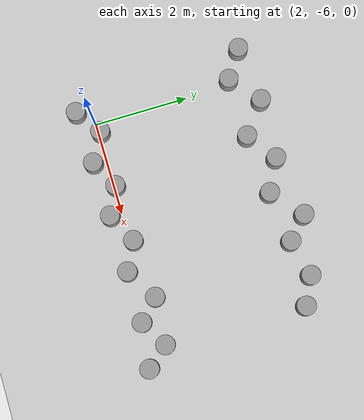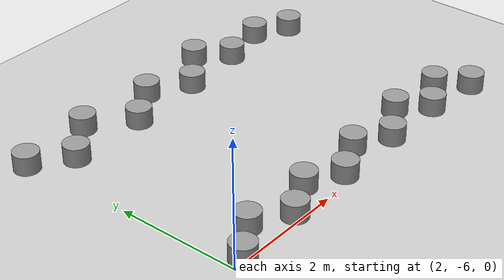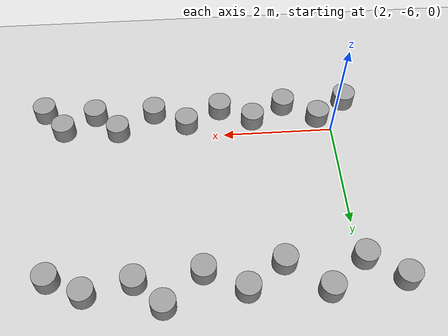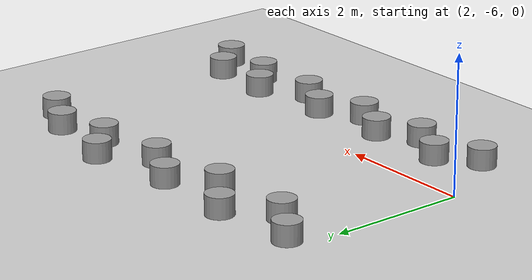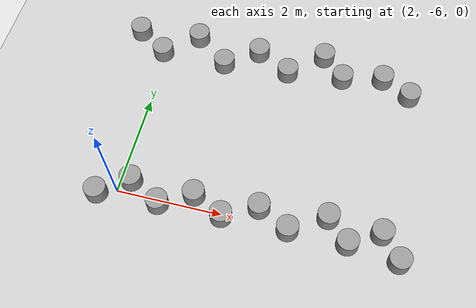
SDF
<sdf version="1.7">
 <world name="default">
  <model name="ground_plane">
   <static>1</static>
   <link name="link">
    <collision name="collision">
     <geometry><plane><normal>0 0 1</normal><size>100 100</size></plane></geometry>
     <surface>
      <contact><collide_bitmask>65535</collide_bitmask></contact>
      <friction><ode><mu>100</mu><mu2>50</mu2></ode></friction>
     </surface>
    </collision>
    <visual name="visual">
     <cast_shadows>0</cast_shadows>
     <geometry><plane><normal>0 0 1</normal><size>100 100</size></plane></geometry>
     <material>
      <script><uri>file://media/materials/scripts/gazebo.material</uri><name>Gazebo/Grey</name></script>
     </material>
    </visual>
   </link>
  </model>
  <model name="Test_pot_clone_13">
   <link name="link_0">
    <inertial>
     <mass>0.044841</mass>
     <inertia>
      <ixx>0.000748065</ixx>
      <ixy>0</ixy>
      <ixz>0</ixz>
      <iyy>0.000748065</iyy>
      <iyz>0</iyz>
      <izz>0.000864954</izz>
     </inertia>
    </inertial>
    <pose>3e-06 1e-06 0 0 -0 0</pose>
    <visual name="visual">
     <geometry><cylinder><radius>0.196415</radius><length>0.290612</length></cylinder></geometry>
     <material>
      <lighting>1</lighting>
      <script><uri>file://media/materials/scripts/gazebo.material</uri><name>Gazebo/Grey</name></script>
      <shader type="pixel"/>
     </material>
    </visual>
    <collision name="collision">
     <geometry><cylinder><radius>0.196415</radius><length>0.290612</length></cylinder></geometry>
     <surface>
      <friction>
       <ode><mu>1</mu><mu2>1</mu2><fdir1>0 0 0</fdir1><slip1>0</slip1><slip2>0</slip2></ode>
       <torsional>
        <coefficient>1</coefficient>
        <patch_radius>0</patch_radius>
        <surface_radius>0</surface_radius>
        <use_patch_radius>1</use_patch_radius>
        <ode><slip>0</slip></ode>
       </torsional>
      </friction>
      <bounce><restitution_coefficient>0</restitution_coefficient><threshold>1e+06</threshold></bounce>
      <contact>
       <collide_without_contact>0</collide_without_contact>
       <collide_without_contact_bitmask>1</collide_without_contact_bitmask>
       <collide_bitmask>1</collide_bitmask>
       <ode>
        <soft_cfm>0</soft_cfm>
        <soft_erp>0.2</soft_erp>
        <kp>1e+13</kp>
        <kd>1</kd>
        <max_vel>0.01</max_vel>
        <min_depth>0</min_depth>
       </ode>
       <bullet>
        <split_impulse>1</split_impulse>
        <split_impulse_penetration_threshold>-0.01</split_impulse_penetration_threshold>
        <soft_cfm>0</soft_cfm>
        <soft_erp>0.2</soft_erp>
        <kp>1e+13</kp>
        <kd>1</kd>
       </bullet>
      </contact>
     </surface>
    </collision>
   </link>
   <static>0</static>
   <pose>1.47064 -2.71563 0.575582 -2.5e-05 1e-06 -0.00057</pose>
  </model>
  <model name="Test_pot_clone_14">
   <link name="link_0">
    <inertial>
     <mass>0.044841</mass>
     <inertia>
      <ixx>0.000748065</ixx>
      <ixy>0</ixy>
      <ixz>0</ixz>
      <iyy>0.000748065</iyy>
      <iyz>0</iyz>
      <izz>0.000864954</izz>
     </inertia>
    </inertial>
    <pose>3e-06 1e-06 0 0 -0 0</pose>
    <visual name="visual">
     <geometry><cylinder><radius>0.196415</radius><length>0.290612</length></cylinder></geometry>
     <material>
      <lighting>1</lighting>
      <script><uri>file://media/materials/scripts/gazebo.material</uri><name>Gazebo/Grey</name></script>
      <shader type="pixel"/>
     </material>
    </visual>
    <collision name="collision">
     <geometry><cylinder><radius>0.196415</radius><length>0.290612</length></cylinder></geometry>
     <surface>
      <friction>
       <ode><mu>1</mu><mu2>1</mu2><fdir1>0 0 0</fdir1><slip1>0</slip1><slip2>0</slip2></ode>
       <torsional>
        <coefficient>1</coefficient>
        <patch_radius>0</patch_radius>
        <surface_radius>0</surface_radius>
        <use_patch_radius>1</use_patch_radius>
        <ode><slip>0</slip></ode>
       </torsional>
      </friction>
      <bounce><restitution_coefficient>0</restitution_coefficient><threshold>1e+06</threshold></bounce>
      <contact>
       <collide_without_contact>0</collide_without_contact>
       <collide_without_contact_bitmask>1</collide_without_contact_bitmask>
       <collide_bitmask>1</collide_bitmask>
       <ode>
        <soft_cfm>0</soft_cfm>
        <soft_erp>0.2</soft_erp>
        <kp>1e+13</kp>
        <kd>1</kd>
        <max_vel>0.01</max_vel>
        <min_depth>0</min_depth>
       </ode>
       <bullet>
        <split_impulse>1</split_impulse>
        <split_impulse_penetration_threshold>-0.01</split_impulse_penetration_threshold>
        <soft_cfm>0</soft_cfm>
        <soft_erp>0.2</soft_erp>
        <kp>1e+13</kp>
        <kd>1</kd>
       </bullet>
      </contact>
     </surface>
    </collision>
   </link>
   <static>0</static>
   <pose>2.04477 -3.09911 0.575586 -1.3e-05 -2e-06 -0.000704</pose>
  </model>
  <model name="Test_pot_clone_15">
   <link name="link_0">
    <inertial>
     <mass>0.044841</mass>
     <inertia>
      <ixx>0.000748065</ixx>
      <ixy>0</ixy>
      <ixz>0</ixz>
      <iyy>0.000748065</iyy>
      <iyz>0</iyz>
      <izz>0.000864954</izz>
     </inertia>
    </inertial>
    <pose>3e-06 1e-06 0 0 -0 0</pose>
    <visual name="visual">
     <geometry><cylinder><radius>0.196415</radius><length>0.290612</length></cylinder></geometry>
     <material>
      <lighting>1</lighting>
      <script><uri>file://media/materials/scripts/gazebo.material</uri><name>Gazebo/Grey</name></script>
      <shader type="pixel"/>
     </material>
    </visual>
    <collision name="collision">
     <geometry><cylinder><radius>0.196415</radius><length>0.290612</length></cylinder></geometry>
     <surface>
      <friction>
       <ode><mu>1</mu><mu2>1</mu2><fdir1>0 0 0</fdir1><slip1>0</slip1><slip2>0</slip2></ode>
       <torsional>
        <coefficient>1</coefficient>
        <patch_radius>0</patch_radius>
        <surface_radius>0</surface_radius>
        <use_patch_radius>1</use_patch_radius>
        <ode><slip>0</slip></ode>
       </torsional>
      </friction>
      <bounce><restitution_coefficient>0</restitution_coefficient><threshold>1e+06</threshold></bounce>
      <contact>
       <collide_without_contact>0</collide_without_contact>
       <collide_without_contact_bitmask>1</collide_without_contact_bitmask>
       <collide_bitmask>1</collide_bitmask>
       <ode>
        <soft_cfm>0</soft_cfm>
        <soft_erp>0.2</soft_erp>
        <kp>1e+13</kp>
        <kd>1</kd>
        <max_vel>0.01</max_vel>
        <min_depth>0</min_depth>
       </ode>
       <bullet>
        <split_impulse>1</split_impulse>
        <split_impulse_penetration_threshold>-0.01</split_impulse_penetration_threshold>
        <soft_cfm>0</soft_cfm>
        <soft_erp>0.2</soft_erp>
        <kp>1e+13</kp>
        <kd>1</kd>
       </bullet>
      </contact>
     </surface>
    </collision>
   </link>
   <static>0</static>
   <pose>2.64881 -2.59643 0.57558 -2.3e-05 1e-06 -0.000498</pose>
  </model>
  <model name="Test_pot_clone_16">
   <link name="link_0">
    <inertial>
     <mass>0.044841</mass>
     <inertia>
      <ixx>0.000748065</ixx>
      <ixy>0</ixy>
      <ixz>0</ixz>
      <iyy>0.000748065</iyy>
      <iyz>0</iyz>
      <izz>0.000864954</izz>
     </inertia>
    </inertial>
    <pose>3e-06 1e-06 0 0 -0 0</pose>
    <visual name="visual">
     <geometry><cylinder><radius>0.196415</radius><length>0.290612</length></cylinder></geometry>
     <material>
      <lighting>1</lighting>
      <script><uri>file://media/materials/scripts/gazebo.material</uri><name>Gazebo/Grey</name></script>
      <shader type="pixel"/>
     </material>
    </visual>
    <collision name="collision">
     <geometry><cylinder><radius>0.196415</radius><length>0.290612</length></cylinder></geometry>
     <surface>
      <friction>
       <ode><mu>1</mu><mu2>1</mu2><fdir1>0 0 0</fdir1><slip1>0</slip1><slip2>0</slip2></ode>
       <torsional>
        <coefficient>1</coefficient>
        <patch_radius>0</patch_radius>
        <surface_radius>0</surface_radius>
        <use_patch_radius>1</use_patch_radius>
        <ode><slip>0</slip></ode>
       </torsional>
      </friction>
      <bounce><restitution_coefficient>0</restitution_coefficient><threshold>1e+06</threshold></bounce>
      <contact>
       <collide_without_contact>0</collide_without_contact>
       <collide_without_contact_bitmask>1</collide_without_contact_bitmask>
       <collide_bitmask>1</collide_bitmask>
       <ode>
        <soft_cfm>0</soft_cfm>
        <soft_erp>0.2</soft_erp>
        <kp>1e+13</kp>
        <kd>1</kd>
        <max_vel>0.01</max_vel>
        <min_depth>0</min_depth>
       </ode>
       <bullet>
        <split_impulse>1</split_impulse>
        <split_impulse_penetration_threshold>-0.01</split_impulse_penetration_threshold>
        <soft_cfm>0</soft_cfm>
        <soft_erp>0.2</soft_erp>
        <kp>1e+13</kp>
        <kd>1</kd>
       </bullet>
      </contact>
     </surface>
    </collision>
   </link>
   <static>0</static>
   <pose>3.29426 -3.09315 0.57559 8e-06 9e-06 -0.000687</pose>
  </model>
  <model name="Test_pot_clone_17">
   <link name="link_0">
    <inertial>
     <mass>0.044841</mass>
     <inertia>
      <ixx>0.000748065</ixx>
      <ixy>0</ixy>
      <ixz>0</ixz>
      <iyy>0.000748065</iyy>
      <iyz>0</iyz>
      <izz>0.000864954</izz>
     </inertia>
    </inertial>
    <pose>3e-06 1e-06 0 0 -0 0</pose>
    <visual name="visual">
     <geometry><cylinder><radius>0.196415</radius><length>0.290612</length></cylinder></geometry>
     <material>
      <lighting>1</lighting>
      <script><uri>file://media/materials/scripts/gazebo.material</uri><name>Gazebo/Grey</name></script>
      <shader type="pixel"/>
     </material>
    </visual>
    <collision name="collision">
     <geometry><cylinder><radius>0.196415</radius><length>0.290612</length></cylinder></geometry>
     <surface>
      <friction>
       <ode><mu>1</mu><mu2>1</mu2><fdir1>0 0 0</fdir1><slip1>0</slip1><slip2>0</slip2></ode>
       <torsional>
        <coefficient>1</coefficient>
        <patch_radius>0</patch_radius>
        <surface_radius>0</surface_radius>
        <use_patch_radius>1</use_patch_radius>
        <ode><slip>0</slip></ode>
       </torsional>
      </friction>
      <bounce><restitution_coefficient>0</restitution_coefficient><threshold>1e+06</threshold></bounce>
      <contact>
       <collide_without_contact>0</collide_without_contact>
       <collide_without_contact_bitmask>1</collide_without_contact_bitmask>
       <collide_bitmask>1</collide_bitmask>
       <ode>
        <soft_cfm>0</soft_cfm>
        <soft_erp>0.2</soft_erp>
        <kp>1e+13</kp>
        <kd>1</kd>
        <max_vel>0.01</max_vel>
        <min_depth>0</min_depth>
       </ode>
       <bullet>
        <split_impulse>1</split_impulse>
        <split_impulse_penetration_threshold>-0.01</split_impulse_penetration_threshold>
        <soft_cfm>0</soft_cfm>
        <soft_erp>0.2</soft_erp>
        <kp>1e+13</kp>
        <kd>1</kd>
       </bullet>
      </contact>
     </surface>
    </collision>
   </link>
   <static>0</static>
   <pose>3.89865 -2.66951 0.57558 -1.7e-05 -0 -0.000385</pose>
  </model>
  <model name="Test_pot_clone_18">
   <link name="link_0">
    <inertial>
     <mass>0.044841</mass>
     <inertia>
      <ixx>0.000748065</ixx>
      <ixy>0</ixy>
      <ixz>0</ixz>
      <iyy>0.000748065</iyy>
      <iyz>0</iyz>
      <izz>0.000864954</izz>
     </inertia>
    </inertial>
    <pose>3e-06 1e-06 0 0 -0 0</pose>
    <visual name="visual">
     <geometry><cylinder><radius>0.196415</radius><length>0.290612</length></cylinder></geometry>
     <material>
      <lighting>1</lighting>
      <script><uri>file://media/materials/scripts/gazebo.material</uri><name>Gazebo/Grey</name></script>
      <shader type="pixel"/>
     </material>
    </visual>
    <collision name="collision">
     <geometry><cylinder><radius>0.196415</radius><length>0.290612</length></cylinder></geometry>
     <surface>
      <friction>
       <ode><mu>1</mu><mu2>1</mu2><fdir1>0 0 0</fdir1><slip1>0</slip1><slip2>0</slip2></ode>
       <torsional>
        <coefficient>1</coefficient>
        <patch_radius>0</patch_radius>
        <surface_radius>0</surface_radius>
        <use_patch_radius>1</use_patch_radius>
        <ode><slip>0</slip></ode>
       </torsional>
      </friction>
      <bounce><restitution_coefficient>0</restitution_coefficient><threshold>1e+06</threshold></bounce>
      <contact>
       <collide_without_contact>0</collide_without_contact>
       <collide_without_contact_bitmask>1</collide_without_contact_bitmask>
       <collide_bitmask>1</collide_bitmask>
       <ode>
        <soft_cfm>0</soft_cfm>
        <soft_erp>0.2</soft_erp>
        <kp>1e+13</kp>
        <kd>1</kd>
        <max_vel>0.01</max_vel>
        <min_depth>0</min_depth>
       </ode>
       <bullet>
        <split_impulse>1</split_impulse>
        <split_impulse_penetration_threshold>-0.01</split_impulse_penetration_threshold>
        <soft_cfm>0</soft_cfm>
        <soft_erp>0.2</soft_erp>
        <kp>1e+13</kp>
        <kd>1</kd>
       </bullet>
      </contact>
     </surface>
    </collision>
   </link>
   <static>0</static>
   <pose>4.54505 -3.00659 0.575594 3.9e-05 -2e-06 -0.0003</pose>
  </model>
  <model name="Test_pot_clone_19">
   <link name="link_0">
    <inertial>
     <mass>0.044841</mass>
     <inertia>
      <ixx>0.000748065</ixx>
      <ixy>0</ixy>
      <ixz>0</ixz>
      <iyy>0.000748065</iyy>
      <iyz>0</iyz>
      <izz>0.000864954</izz>
     </inertia>
    </inertial>
    <pose>3e-06 1e-06 0 0 -0 0</pose>
    <visual name="visual">
     <geometry><cylinder><radius>0.196415</radius><length>0.290612</length></cylinder></geometry>
     <material>
      <lighting>1</lighting>
      <script><uri>file://media/materials/scripts/gazebo.material</uri><name>Gazebo/Grey</name></script>
      <shader type="pixel"/>
     </material>
    </visual>
    <collision name="collision">
     <geometry><cylinder><radius>0.196415</radius><length>0.290612</length></cylinder></geometry>
     <surface>
      <friction>
       <ode><mu>1</mu><mu2>1</mu2><fdir1>0 0 0</fdir1><slip1>0</slip1><slip2>0</slip2></ode>
       <torsional>
        <coefficient>1</coefficient>
        <patch_radius>0</patch_radius>
        <surface_radius>0</surface_radius>
        <use_patch_radius>1</use_patch_radius>
        <ode><slip>0</slip></ode>
       </torsional>
      </friction>
      <bounce><restitution_coefficient>0</restitution_coefficient><threshold>1e+06</threshold></bounce>
      <contact>
       <collide_without_contact>0</collide_without_contact>
       <collide_without_contact_bitmask>1</collide_without_contact_bitmask>
       <collide_bitmask>1</collide_bitmask>
       <ode>
        <soft_cfm>0</soft_cfm>
        <soft_erp>0.2</soft_erp>
        <kp>1e+13</kp>
        <kd>1</kd>
        <max_vel>0.01</max_vel>
        <min_depth>0</min_depth>
       </ode>
       <bullet>
        <split_impulse>1</split_impulse>
        <split_impulse_penetration_threshold>-0.01</split_impulse_penetration_threshold>
        <soft_cfm>0</soft_cfm>
        <soft_erp>0.2</soft_erp>
        <kp>1e+13</kp>
        <kd>1</kd>
       </bullet>
      </contact>
     </surface>
    </collision>
   </link>
   <static>0</static>
   <pose>5.16829 -2.48542 0.575587 -5e-06 5.3e-05 -0.000472</pose>
  </model>
  <model name="Test_pot_clone_20">
   <link name="link_0">
    <inertial>
     <mass>0.044841</mass>
     <inertia>
      <ixx>0.000748065</ixx>
      <ixy>0</ixy>
      <ixz>0</ixz>
      <iyy>0.000748065</iyy>
      <iyz>0</iyz>
      <izz>0.000864954</izz>
     </inertia>
    </inertial>
    <pose>3e-06 1e-06 0 0 -0 0</pose>
    <visual name="visual">
     <geometry><cylinder><radius>0.196415</radius><length>0.290612</length></cylinder></geometry>
     <material>
      <lighting>1</lighting>
      <script><uri>file://media/materials/scripts/gazebo.material</uri><name>Gazebo/Grey</name></script>
      <shader type="pixel"/>
     </material>
    </visual>
    <collision name="collision">
     <geometry><cylinder><radius>0.196415</radius><length>0.290612</length></cylinder></geometry>
     <surface>
      <friction>
       <ode><mu>1</mu><mu2>1</mu2><fdir1>0 0 0</fdir1><slip1>0</slip1><slip2>0</slip2></ode>
       <torsional>
        <coefficient>1</coefficient>
        <patch_radius>0</patch_radius>
        <surface_radius>0</surface_radius>
        <use_patch_radius>1</use_patch_radius>
        <ode><slip>0</slip></ode>
       </torsional>
      </friction>
      <bounce><restitution_coefficient>0</restitution_coefficient><threshold>1e+06</threshold></bounce>
      <contact>
       <collide_without_contact>0</collide_without_contact>
       <collide_without_contact_bitmask>1</collide_without_contact_bitmask>
       <collide_bitmask>1</collide_bitmask>
       <ode>
        <soft_cfm>0</soft_cfm>
        <soft_erp>0.2</soft_erp>
        <kp>1e+13</kp>
        <kd>1</kd>
        <max_vel>0.01</max_vel>
        <min_depth>0</min_depth>
       </ode>
       <bullet>
        <split_impulse>1</split_impulse>
        <split_impulse_penetration_threshold>-0.01</split_impulse_penetration_threshold>
        <soft_cfm>0</soft_cfm>
        <soft_erp>0.2</soft_erp>
        <kp>1e+13</kp>
        <kd>1</kd>
       </bullet>
      </contact>
     </surface>
    </collision>
   </link>
   <static>0</static>
   <pose>5.60424 -2.90045 0.575586 -2.7e-05 1.4e-05 -0.000422</pose>
  </model>
  <model name="Test_pot_clone_21">
   <link name="link_0">
    <inertial>
     <mass>0.044841</mass>
     <inertia>
      <ixx>0.000748065</ixx>
      <ixy>0</ixy>
      <ixz>0</ixz>
      <iyy>0.000748065</iyy>
      <iyz>0</iyz>
      <izz>0.000864954</izz>
     </inertia>
    </inertial>
    <pose>3e-06 1e-06 0 0 -0 0</pose>
    <visual name="visual">
     <geometry><cylinder><radius>0.196415</radius><length>0.290612</length></cylinder></geometry>
     <material>
      <lighting>1</lighting>
      <script><uri>file://media/materials/scripts/gazebo.material</uri><name>Gazebo/Grey</name></script>
      <shader type="pixel"/>
     </material>
    </visual>
    <collision name="collision">
     <geometry><cylinder><radius>0.196415</radius><length>0.290612</length></cylinder></geometry>
     <surface>
      <friction>
       <ode><mu>1</mu><mu2>1</mu2><fdir1>0 0 0</fdir1><slip1>0</slip1><slip2>0</slip2></ode>
       <torsional>
        <coefficient>1</coefficient>
        <patch_radius>0</patch_radius>
        <surface_radius>0</surface_radius>
        <use_patch_radius>1</use_patch_radius>
        <ode><slip>0</slip></ode>
       </torsional>
      </friction>
      <bounce><restitution_coefficient>0</restitution_coefficient><threshold>1e+06</threshold></bounce>
      <contact>
       <collide_without_contact>0</collide_without_contact>
       <collide_without_contact_bitmask>1</collide_without_contact_bitmask>
       <collide_bitmask>1</collide_bitmask>
       <ode>
        <soft_cfm>0</soft_cfm>
        <soft_erp>0.2</soft_erp>
        <kp>1e+13</kp>
        <kd>1</kd>
        <max_vel>0.01</max_vel>
        <min_depth>0</min_depth>
       </ode>
       <bullet>
        <split_impulse>1</split_impulse>
        <split_impulse_penetration_threshold>-0.01</split_impulse_penetration_threshold>
        <soft_cfm>0</soft_cfm>
        <soft_erp>0.2</soft_erp>
        <kp>1e+13</kp>
        <kd>1</kd>
       </bullet>
      </contact>
     </surface>
    </collision>
   </link>
   <static>0</static>
   <pose>6.36774 -2.73338 0.57558 -1.4e-05 0 -0.000467</pose>
  </model>
  <model name="Test_pot_clone_22">
   <link name="link_0">
    <inertial>
     <mass>0.044841</mass>
     <inertia>
      <ixx>0.000748065</ixx>
      <ixy>0</ixy>
      <ixz>0</ixz>
      <iyy>0.000748065</iyy>
      <iyz>0</iyz>
      <izz>0.000864954</izz>
     </inertia>
    </inertial>
    <pose>3e-06 1e-06 0 0 -0 0</pose>
    <visual name="visual">
     <geometry><cylinder><radius>0.196415</radius><length>0.290612</length></cylinder></geometry>
     <material>
      <lighting>1</lighting>
      <script><uri>file://media/materials/scripts/gazebo.material</uri><name>Gazebo/Grey</name></script>
      <shader type="pixel"/>
     </material>
    </visual>
    <collision name="collision">
     <geometry><cylinder><radius>0.196415</radius><length>0.290612</length></cylinder></geometry>
     <surface>
      <friction>
       <ode><mu>1</mu><mu2>1</mu2><fdir1>0 0 0</fdir1><slip1>0</slip1><slip2>0</slip2></ode>
       <torsional>
        <coefficient>1</coefficient>
        <patch_radius>0</patch_radius>
        <surface_radius>0</surface_radius>
        <use_patch_radius>1</use_patch_radius>
        <ode><slip>0</slip></ode>
       </torsional>
      </friction>
      <bounce><restitution_coefficient>0</restitution_coefficient><threshold>1e+06</threshold></bounce>
      <contact>
       <collide_without_contact>0</collide_without_contact>
       <collide_without_contact_bitmask>1</collide_without_contact_bitmask>
       <collide_bitmask>1</collide_bitmask>
       <ode>
        <soft_cfm>0</soft_cfm>
        <soft_erp>0.2</soft_erp>
        <kp>1e+13</kp>
        <kd>1</kd>
        <max_vel>0.01</max_vel>
        <min_depth>0</min_depth>
       </ode>
       <bullet>
        <split_impulse>1</split_impulse>
        <split_impulse_penetration_threshold>-0.01</split_impulse_penetration_threshold>
        <soft_cfm>0</soft_cfm>
        <soft_erp>0.2</soft_erp>
        <kp>1e+13</kp>
        <kd>1</kd>
       </bullet>
      </contact>
     </surface>
    </collision>
   </link>
   <static>0</static>
   <pose>6.91835 -3.0068 0.575592 -3.5e-05 3.8e-05 -0.000504</pose>
  </model>
  <model name="Test_pot_clone_45">
   <link name="link_0">
    <inertial>
     <mass>0.044841</mass>
     <inertia>
      <ixx>0.000748065</ixx>
      <ixy>0</ixy>
      <ixz>0</ixz>
      <iyy>0.000748065</iyy>
      <iyz>0</iyz>
      <izz>0.000864954</izz>
     </inertia>
    </inertial>
    <pose>3e-06 1e-06 0 0 -0 0</pose>
    <visual name="visual">
     <geometry><cylinder><radius>0.196415</radius><length>0.290612</length></cylinder></geometry>
     <material>
      <lighting>1</lighting>
      <script><uri>file://media/materials/scripts/gazebo.material</uri><name>Gazebo/Grey</name></script>
      <shader type="pixel"/>
     </material>
    </visual>
    <collision name="collision">
     <geometry><cylinder><radius>0.196415</radius><length>0.290612</length></cylinder></geometry>
     <surface>
      <friction>
       <ode><mu>1</mu><mu2>1</mu2><fdir1>0 0 0</fdir1><slip1>0</slip1><slip2>0</slip2></ode>
       <torsional>
        <coefficient>1</coefficient>
        <patch_radius>0</patch_radius>
        <surface_radius>0</surface_radius>
        <use_patch_radius>1</use_patch_radius>
        <ode><slip>0</slip></ode>
       </torsional>
      </friction>
      <bounce><restitution_coefficient>0</restitution_coefficient><threshold>1e+06</threshold></bounce>
      <contact>
       <collide_without_contact>0</collide_without_contact>
       <collide_without_contact_bitmask>1</collide_without_contact_bitmask>
       <collide_bitmask>1</collide_bitmask>
       <ode>
        <soft_cfm>0</soft_cfm>
        <soft_erp>0.2</soft_erp>
        <kp>1e+13</kp>
        <kd>1</kd>
        <max_vel>0.01</max_vel>
        <min_depth>0</min_depth>
       </ode>
       <bullet>
        <split_impulse>1</split_impulse>
        <split_impulse_penetration_threshold>-0.01</split_impulse_penetration_threshold>
        <soft_cfm>0</soft_cfm>
        <soft_erp>0.2</soft_erp>
        <kp>1e+13</kp>
        <kd>1</kd>
       </bullet>
      </contact>
     </surface>
    </collision>
   </link>
   <static>0</static>
   <pose>1.81623 -6.29586 0.575588 -3e-06 -1e-06 -0.000497</pose>
  </model>
  <model name="Test_pot_clone_46">
   <link name="link_0">
    <inertial>
     <mass>0.044841</mass>
     <inertia>
      <ixx>0.000748065</ixx>
      <ixy>0</ixy>
      <ixz>0</ixz>
      <iyy>0.000748065</iyy>
      <iyz>0</iyz>
      <izz>0.000864954</izz>
     </inertia>
    </inertial>
    <pose>3e-06 1e-06 0 0 -0 0</pose>
    <visual name="visual">
     <geometry><cylinder><radius>0.196415</radius><length>0.290612</length></cylinder></geometry>
     <material>
      <lighting>1</lighting>
      <script><uri>file://media/materials/scripts/gazebo.material</uri><name>Gazebo/Grey</name></script>
      <shader type="pixel"/>
     </material>
    </visual>
    <collision name="collision">
     <geometry><cylinder><radius>0.196415</radius><length>0.290612</length></cylinder></geometry>
     <surface>
      <friction>
       <ode><mu>1</mu><mu2>1</mu2><fdir1>0 0 0</fdir1><slip1>0</slip1><slip2>0</slip2></ode>
       <torsional>
        <coefficient>1</coefficient>
        <patch_radius>0</patch_radius>
        <surface_radius>0</surface_radius>
        <use_patch_radius>1</use_patch_radius>
        <ode><slip>0</slip></ode>
       </torsional>
      </friction>
      <bounce><restitution_coefficient>0</restitution_coefficient><threshold>1e+06</threshold></bounce>
      <contact>
       <collide_without_contact>0</collide_without_contact>
       <collide_without_contact_bitmask>1</collide_without_contact_bitmask>
       <collide_bitmask>1</collide_bitmask>
       <ode>
        <soft_cfm>0</soft_cfm>
        <soft_erp>0.2</soft_erp>
        <kp>1e+13</kp>
        <kd>1</kd>
        <max_vel>0.01</max_vel>
        <min_depth>0</min_depth>
       </ode>
       <bullet>
        <split_impulse>1</split_impulse>
        <split_impulse_penetration_threshold>-0.01</split_impulse_penetration_threshold>
        <soft_cfm>0</soft_cfm>
        <soft_erp>0.2</soft_erp>
        <kp>1e+13</kp>
        <kd>1</kd>
       </bullet>
      </contact>
     </surface>
    </collision>
   </link>
   <static>0</static>
   <pose>2.34367 -5.92861 0.575588 1.4e-05 -2.9e-05 -0.00024</pose>
  </model>
  <model name="Test_pot_clone_47">
   <link name="link_0">
    <inertial>
     <mass>0.044841</mass>
     <inertia>
      <ixx>0.000748065</ixx>
      <ixy>0</ixy>
      <ixz>0</ixz>
      <iyy>0.000748065</iyy>
      <iyz>0</iyz>
      <izz>0.000864954</izz>
     </inertia>
    </inertial>
    <pose>3e-06 1e-06 0 0 -0 0</pose>
    <visual name="visual">
     <geometry><cylinder><radius>0.196415</radius><length>0.290612</length></cylinder></geometry>
     <material>
      <lighting>1</lighting>
      <script><uri>file://media/materials/scripts/gazebo.material</uri><name>Gazebo/Grey</name></script>
      <shader type="pixel"/>
     </material>
    </visual>
    <collision name="collision">
     <geometry><cylinder><radius>0.196415</radius><length>0.290612</length></cylinder></geometry>
     <surface>
      <friction>
       <ode><mu>1</mu><mu2>1</mu2><fdir1>0 0 0</fdir1><slip1>0</slip1><slip2>0</slip2></ode>
       <torsional>
        <coefficient>1</coefficient>
        <patch_radius>0</patch_radius>
        <surface_radius>0</surface_radius>
        <use_patch_radius>1</use_patch_radius>
        <ode><slip>0</slip></ode>
       </torsional>
      </friction>
      <bounce><restitution_coefficient>0</restitution_coefficient><threshold>1e+06</threshold></bounce>
      <contact>
       <collide_without_contact>0</collide_without_contact>
       <collide_without_contact_bitmask>1</collide_without_contact_bitmask>
       <collide_bitmask>1</collide_bitmask>
       <ode>
        <soft_cfm>0</soft_cfm>
        <soft_erp>0.2</soft_erp>
        <kp>1e+13</kp>
        <kd>1</kd>
        <max_vel>0.01</max_vel>
        <min_depth>0</min_depth>
       </ode>
       <bullet>
        <split_impulse>1</split_impulse>
        <split_impulse_penetration_threshold>-0.01</split_impulse_penetration_threshold>
        <soft_cfm>0</soft_cfm>
        <soft_erp>0.2</soft_erp>
        <kp>1e+13</kp>
        <kd>1</kd>
       </bullet>
      </contact>
     </surface>
    </collision>
   </link>
   <static>0</static>
   <pose>2.92986 -6.2444 0.57559 -3.9e-05 -3e-06 -0.000816</pose>
  </model>
  <model name="Test_pot_clone_48">
   <link name="link_0">
    <inertial>
     <mass>0.044841</mass>
     <inertia>
      <ixx>0.000748065</ixx>
      <ixy>0</ixy>
      <ixz>0</ixz>
      <iyy>0.000748065</iyy>
      <iyz>0</iyz>
      <izz>0.000864954</izz>
     </inertia>
    </inertial>
    <pose>3e-06 1e-06 0 0 -0 0</pose>
    <visual name="visual">
     <geometry><cylinder><radius>0.196415</radius><length>0.290612</length></cylinder></geometry>
     <material>
      <lighting>1</lighting>
      <script><uri>file://media/materials/scripts/gazebo.material</uri><name>Gazebo/Grey</name></script>
      <shader type="pixel"/>
     </material>
    </visual>
    <collision name="collision">
     <geometry><cylinder><radius>0.196415</radius><length>0.290612</length></cylinder></geometry>
     <surface>
      <friction>
       <ode><mu>1</mu><mu2>1</mu2><fdir1>0 0 0</fdir1><slip1>0</slip1><slip2>0</slip2></ode>
       <torsional>
        <coefficient>1</coefficient>
        <patch_radius>0</patch_radius>
        <surface_radius>0</surface_radius>
        <use_patch_radius>1</use_patch_radius>
        <ode><slip>0</slip></ode>
       </torsional>
      </friction>
      <bounce><restitution_coefficient>0</restitution_coefficient><threshold>1e+06</threshold></bounce>
      <contact>
       <collide_without_contact>0</collide_without_contact>
       <collide_without_contact_bitmask>1</collide_without_contact_bitmask>
       <collide_bitmask>1</collide_bitmask>
       <ode>
        <soft_cfm>0</soft_cfm>
        <soft_erp>0.2</soft_erp>
        <kp>1e+13</kp>
        <kd>1</kd>
        <max_vel>0.01</max_vel>
        <min_depth>0</min_depth>
       </ode>
       <bullet>
        <split_impulse>1</split_impulse>
        <split_impulse_penetration_threshold>-0.01</split_impulse_penetration_threshold>
        <soft_cfm>0</soft_cfm>
        <soft_erp>0.2</soft_erp>
        <kp>1e+13</kp>
        <kd>1</kd>
       </bullet>
      </contact>
     </surface>
    </collision>
   </link>
   <static>0</static>
   <pose>3.50907 -5.94103 0.575588 2e-05 1.6e-05 -0.000406</pose>
  </model>
  <model name="Test_pot_clone_49">
   <link name="link_0">
    <inertial>
     <mass>0.044841</mass>
     <inertia>
      <ixx>0.000748065</ixx>
      <ixy>0</ixy>
      <ixz>0</ixz>
      <iyy>0.000748065</iyy>
      <iyz>0</iyz>
      <izz>0.000864954</izz>
     </inertia>
    </inertial>
    <pose>3e-06 1e-06 0 0 -0 0</pose>
    <visual name="visual">
     <geometry><cylinder><radius>0.196415</radius><length>0.290612</length></cylinder></geometry>
     <material>
      <lighting>1</lighting>
      <script><uri>file://media/materials/scripts/gazebo.material</uri><name>Gazebo/Grey</name></script>
      <shader type="pixel"/>
     </material>
    </visual>
    <collision name="collision">
     <geometry><cylinder><radius>0.196415</radius><length>0.290612</length></cylinder></geometry>
     <surface>
      <friction>
       <ode><mu>1</mu><mu2>1</mu2><fdir1>0 0 0</fdir1><slip1>0</slip1><slip2>0</slip2></ode>
       <torsional>
        <coefficient>1</coefficient>
        <patch_radius>0</patch_radius>
        <surface_radius>0</surface_radius>
        <use_patch_radius>1</use_patch_radius>
        <ode><slip>0</slip></ode>
       </torsional>
      </friction>
      <bounce><restitution_coefficient>0</restitution_coefficient><threshold>1e+06</threshold></bounce>
      <contact>
       <collide_without_contact>0</collide_without_contact>
       <collide_without_contact_bitmask>1</collide_without_contact_bitmask>
       <collide_bitmask>1</collide_bitmask>
       <ode>
        <soft_cfm>0</soft_cfm>
        <soft_erp>0.2</soft_erp>
        <kp>1e+13</kp>
        <kd>1</kd>
        <max_vel>0.01</max_vel>
        <min_depth>0</min_depth>
       </ode>
       <bullet>
        <split_impulse>1</split_impulse>
        <split_impulse_penetration_threshold>-0.01</split_impulse_penetration_threshold>
        <soft_cfm>0</soft_cfm>
        <soft_erp>0.2</soft_erp>
        <kp>1e+13</kp>
        <kd>1</kd>
       </bullet>
      </contact>
     </surface>
    </collision>
   </link>
   <static>0</static>
   <pose>4.07438 -6.21453 0.575599 3.9e-05 -5.4e-05 -0.000469</pose>
  </model>
  <model name="Test_pot_clone_50">
   <link name="link_0">
    <inertial>
     <mass>0.044841</mass>
     <inertia>
      <ixx>0.000748065</ixx>
      <ixy>0</ixy>
      <ixz>0</ixz>
      <iyy>0.000748065</iyy>
      <iyz>0</iyz>
      <izz>0.000864954</izz>
     </inertia>
    </inertial>
    <pose>3e-06 1e-06 0 0 -0 0</pose>
    <visual name="visual">
     <geometry><cylinder><radius>0.196415</radius><length>0.290612</length></cylinder></geometry>
     <material>
      <lighting>1</lighting>
      <script><uri>file://media/materials/scripts/gazebo.material</uri><name>Gazebo/Grey</name></script>
      <shader type="pixel"/>
     </material>
    </visual>
    <collision name="collision">
     <geometry><cylinder><radius>0.196415</radius><length>0.290612</length></cylinder></geometry>
     <surface>
      <friction>
       <ode><mu>1</mu><mu2>1</mu2><fdir1>0 0 0</fdir1><slip1>0</slip1><slip2>0</slip2></ode>
       <torsional>
        <coefficient>1</coefficient>
        <patch_radius>0</patch_radius>
        <surface_radius>0</surface_radius>
        <use_patch_radius>1</use_patch_radius>
        <ode><slip>0</slip></ode>
       </torsional>
      </friction>
      <bounce><restitution_coefficient>0</restitution_coefficient><threshold>1e+06</threshold></bounce>
      <contact>
       <collide_without_contact>0</collide_without_contact>
       <collide_without_contact_bitmask>1</collide_without_contact_bitmask>
       <collide_bitmask>1</collide_bitmask>
       <ode>
        <soft_cfm>0</soft_cfm>
        <soft_erp>0.2</soft_erp>
        <kp>1e+13</kp>
        <kd>1</kd>
        <max_vel>0.01</max_vel>
        <min_depth>0</min_depth>
       </ode>
       <bullet>
        <split_impulse>1</split_impulse>
        <split_impulse_penetration_threshold>-0.01</split_impulse_penetration_threshold>
        <soft_cfm>0</soft_cfm>
        <soft_erp>0.2</soft_erp>
        <kp>1e+13</kp>
        <kd>1</kd>
       </bullet>
      </contact>
     </surface>
    </collision>
   </link>
   <static>0</static>
   <pose>4.68143 -5.90851 0.575589 2e-05 -3e-06 -0.00049</pose>
  </model>
  <model name="Test_pot_clone_51">
   <link name="link_0">
    <inertial>
     <mass>0.044841</mass>
     <inertia>
      <ixx>0.000748065</ixx>
      <ixy>0</ixy>
      <ixz>0</ixz>
      <iyy>0.000748065</iyy>
      <iyz>0</iyz>
      <izz>0.000864954</izz>
     </inertia>
    </inertial>
    <pose>3e-06 1e-06 0 0 -0 0</pose>
    <visual name="visual">
     <geometry><cylinder><radius>0.196415</radius><length>0.290612</length></cylinder></geometry>
     <material>
      <lighting>1</lighting>
      <script><uri>file://media/materials/scripts/gazebo.material</uri><name>Gazebo/Grey</name></script>
      <shader type="pixel"/>
     </material>
    </visual>
    <collision name="collision">
     <geometry><cylinder><radius>0.196415</radius><length>0.290612</length></cylinder></geometry>
     <surface>
      <friction>
       <ode><mu>1</mu><mu2>1</mu2><fdir1>0 0 0</fdir1><slip1>0</slip1><slip2>0</slip2></ode>
       <torsional>
        <coefficient>1</coefficient>
        <patch_radius>0</patch_radius>
        <surface_radius>0</surface_radius>
        <use_patch_radius>1</use_patch_radius>
        <ode><slip>0</slip></ode>
       </torsional>
      </friction>
      <bounce><restitution_coefficient>0</restitution_coefficient><threshold>1e+06</threshold></bounce>
      <contact>
       <collide_without_contact>0</collide_without_contact>
       <collide_without_contact_bitmask>1</collide_without_contact_bitmask>
       <collide_bitmask>1</collide_bitmask>
       <ode>
        <soft_cfm>0</soft_cfm>
        <soft_erp>0.2</soft_erp>
        <kp>1e+13</kp>
        <kd>1</kd>
        <max_vel>0.01</max_vel>
        <min_depth>0</min_depth>
       </ode>
       <bullet>
        <split_impulse>1</split_impulse>
        <split_impulse_penetration_threshold>-0.01</split_impulse_penetration_threshold>
        <soft_cfm>0</soft_cfm>
        <soft_erp>0.2</soft_erp>
        <kp>1e+13</kp>
        <kd>1</kd>
       </bullet>
      </contact>
     </surface>
    </collision>
   </link>
   <static>0</static>
   <pose>5.24931 -6.19264 0.575596 -3.7e-05 3e-06 -0.000435</pose>
  </model>
  <model name="Test_pot_clone_52">
   <link name="link_0">
    <inertial>
     <mass>0.044841</mass>
     <inertia>
      <ixx>0.000748065</ixx>
      <ixy>0</ixy>
      <ixz>0</ixz>
      <iyy>0.000748065</iyy>
      <iyz>0</iyz>
      <izz>0.000864954</izz>
     </inertia>
    </inertial>
    <pose>3e-06 1e-06 0 0 -0 0</pose>
    <visual name="visual">
     <geometry><cylinder><radius>0.196415</radius><length>0.290612</length></cylinder></geometry>
     <material>
      <lighting>1</lighting>
      <script><uri>file://media/materials/scripts/gazebo.material</uri><name>Gazebo/Grey</name></script>
      <shader type="pixel"/>
     </material>
    </visual>
    <collision name="collision">
     <geometry><cylinder><radius>0.196415</radius><length>0.290612</length></cylinder></geometry>
     <surface>
      <friction>
       <ode><mu>1</mu><mu2>1</mu2><fdir1>0 0 0</fdir1><slip1>0</slip1><slip2>0</slip2></ode>
       <torsional>
        <coefficient>1</coefficient>
        <patch_radius>0</patch_radius>
        <surface_radius>0</surface_radius>
        <use_patch_radius>1</use_patch_radius>
        <ode><slip>0</slip></ode>
       </torsional>
      </friction>
      <bounce><restitution_coefficient>0</restitution_coefficient><threshold>1e+06</threshold></bounce>
      <contact>
       <collide_without_contact>0</collide_without_contact>
       <collide_without_contact_bitmask>1</collide_without_contact_bitmask>
       <collide_bitmask>1</collide_bitmask>
       <ode>
        <soft_cfm>0</soft_cfm>
        <soft_erp>0.2</soft_erp>
        <kp>1e+13</kp>
        <kd>1</kd>
        <max_vel>0.01</max_vel>
        <min_depth>0</min_depth>
       </ode>
       <bullet>
        <split_impulse>1</split_impulse>
        <split_impulse_penetration_threshold>-0.01</split_impulse_penetration_threshold>
        <soft_cfm>0</soft_cfm>
        <soft_erp>0.2</soft_erp>
        <kp>1e+13</kp>
        <kd>1</kd>
       </bullet>
      </contact>
     </surface>
    </collision>
   </link>
   <static>0</static>
   <pose>5.89002 -5.80795 0.575594 5.1e-05 1.2e-05 -0.0003</pose>
  </model>
  <model name="Test_pot_clone_53">
   <link name="link_0">
    <inertial>
     <mass>0.044841</mass>
     <inertia>
      <ixx>0.000748065</ixx>
      <ixy>0</ixy>
      <ixz>0</ixz>
      <iyy>0.000748065</iyy>
      <iyz>0</iyz>
      <izz>0.000864954</izz>
     </inertia>
    </inertial>
    <pose>3e-06 1e-06 0 0 -0 0</pose>
    <visual name="visual">
     <geometry><cylinder><radius>0.196415</radius><length>0.290612</length></cylinder></geometry>
     <material>
      <lighting>1</lighting>
      <script><uri>file://media/materials/scripts/gazebo.material</uri><name>Gazebo/Grey</name></script>
      <shader type="pixel"/>
     </material>
    </visual>
    <collision name="collision">
     <geometry><cylinder><radius>0.196415</radius><length>0.290612</length></cylinder></geometry>
     <surface>
      <friction>
       <ode><mu>1</mu><mu2>1</mu2><fdir1>0 0 0</fdir1><slip1>0</slip1><slip2>0</slip2></ode>
       <torsional>
        <coefficient>1</coefficient>
        <patch_radius>0</patch_radius>
        <surface_radius>0</surface_radius>
        <use_patch_radius>1</use_patch_radius>
        <ode><slip>0</slip></ode>
       </torsional>
      </friction>
      <bounce><restitution_coefficient>0</restitution_coefficient><threshold>1e+06</threshold></bounce>
      <contact>
       <collide_without_contact>0</collide_without_contact>
       <collide_without_contact_bitmask>1</collide_without_contact_bitmask>
       <collide_bitmask>1</collide_bitmask>
       <ode>
        <soft_cfm>0</soft_cfm>
        <soft_erp>0.2</soft_erp>
        <kp>1e+13</kp>
        <kd>1</kd>
        <max_vel>0.01</max_vel>
        <min_depth>0</min_depth>
       </ode>
       <bullet>
        <split_impulse>1</split_impulse>
        <split_impulse_penetration_threshold>-0.01</split_impulse_penetration_threshold>
        <soft_cfm>0</soft_cfm>
        <soft_erp>0.2</soft_erp>
        <kp>1e+13</kp>
        <kd>1</kd>
       </bullet>
      </contact>
     </surface>
    </collision>
   </link>
   <static>0</static>
   <pose>6.29322 -6.19888 0.575584 -2.1e-05 -0 -0.00011</pose>
  </model>
  <model name="Test_pot_clone_54">
   <link name="link_0">
    <inertial>
     <mass>0.044841</mass>
     <inertia>
      <ixx>0.000748065</ixx>
      <ixy>0</ixy>
      <ixz>0</ixz>
      <iyy>0.000748065</iyy>
      <iyz>0</iyz>
      <izz>0.000864954</izz>
     </inertia>
    </inertial>
    <pose>3e-06 1e-06 0 0 -0 0</pose>
    <visual name="visual">
     <geometry><cylinder><radius>0.196415</radius><length>0.290612</length></cylinder></geometry>
     <material>
      <lighting>1</lighting>
      <script><uri>file://media/materials/scripts/gazebo.material</uri><name>Gazebo/Grey</name></script>
      <shader type="pixel"/>
     </material>
    </visual>
    <collision name="collision">
     <geometry><cylinder><radius>0.196415</radius><length>0.290612</length></cylinder></geometry>
     <surface>
      <friction>
       <ode><mu>1</mu><mu2>1</mu2><fdir1>0 0 0</fdir1><slip1>0</slip1><slip2>0</slip2></ode>
       <torsional>
        <coefficient>1</coefficient>
        <patch_radius>0</patch_radius>
        <surface_radius>0</surface_radius>
        <use_patch_radius>1</use_patch_radius>
        <ode><slip>0</slip></ode>
       </torsional>
      </friction>
      <bounce><restitution_coefficient>0</restitution_coefficient><threshold>1e+06</threshold></bounce>
      <contact>
       <collide_without_contact>0</collide_without_contact>
       <collide_without_contact_bitmask>1</collide_without_contact_bitmask>
       <collide_bitmask>1</collide_bitmask>
       <ode>
        <soft_cfm>0</soft_cfm>
        <soft_erp>0.2</soft_erp>
        <kp>1e+13</kp>
        <kd>1</kd>
        <max_vel>0.01</max_vel>
        <min_depth>0</min_depth>
       </ode>
       <bullet>
        <split_impulse>1</split_impulse>
        <split_impulse_penetration_threshold>-0.01</split_impulse_penetration_threshold>
        <soft_cfm>0</soft_cfm>
        <soft_erp>0.2</soft_erp>
        <kp>1e+13</kp>
        <kd>1</kd>
       </bullet>
      </contact>
     </surface>
    </collision>
   </link>
   <static>0</static>
   <pose>6.84072 -5.87904 0.575584 -1e-06 -3e-06 -0.000708</pose>
  </model>
  <model name="Test_pot_clone_55">
   <link name="link_0">
    <inertial>
     <mass>0.044841</mass>
     <inertia>
      <ixx>0.000748065</ixx>
      <ixy>0</ixy>
      <ixz>0</ixz>
      <iyy>0.000748065</iyy>
      <iyz>0</iyz>
      <izz>0.000864954</izz>
     </inertia>
    </inertial>
    <pose>3e-06 1e-06 0 0 -0 0</pose>
    <visual name="visual">
     <geometry><cylinder><radius>0.196415</radius><length>0.290612</length></cylinder></geometry>
     <material>
      <lighting>1</lighting>
      <script><uri>file://media/materials/scripts/gazebo.material</uri><name>Gazebo/Grey</name></script>
      <shader type="pixel"/>
     </material>
    </visual>
    <collision name="collision">
     <geometry><cylinder><radius>0.196415</radius><length>0.290612</length></cylinder></geometry>
     <surface>
      <friction>
       <ode><mu>1</mu><mu2>1</mu2><fdir1>0 0 0</fdir1><slip1>0</slip1><slip2>0</slip2></ode>
       <torsional>
        <coefficient>1</coefficient>
        <patch_radius>0</patch_radius>
        <surface_radius>0</surface_radius>
        <use_patch_radius>1</use_patch_radius>
        <ode><slip>0</slip></ode>
       </torsional>
      </friction>
      <bounce><restitution_coefficient>0</restitution_coefficient><threshold>1e+06</threshold></bounce>
      <contact>
       <collide_without_contact>0</collide_without_contact>
       <collide_without_contact_bitmask>1</collide_without_contact_bitmask>
       <collide_bitmask>1</collide_bitmask>
       <ode>
        <soft_cfm>0</soft_cfm>
        <soft_erp>0.2</soft_erp>
        <kp>1e+13</kp>
        <kd>1</kd>
        <max_vel>0.01</max_vel>
        <min_depth>0</min_depth>
       </ode>
       <bullet>
        <split_impulse>1</split_impulse>
        <split_impulse_penetration_threshold>-0.01</split_impulse_penetration_threshold>
        <soft_cfm>0</soft_cfm>
        <soft_erp>0.2</soft_erp>
        <kp>1e+13</kp>
        <kd>1</kd>
       </bullet>
      </contact>
     </surface>
    </collision>
   </link>
   <static>0</static>
   <pose>7.19777 -6.30752 0.575587 -8e-06 3e-06 -0.000583</pose>
  </model>
 </world>
</sdf>
